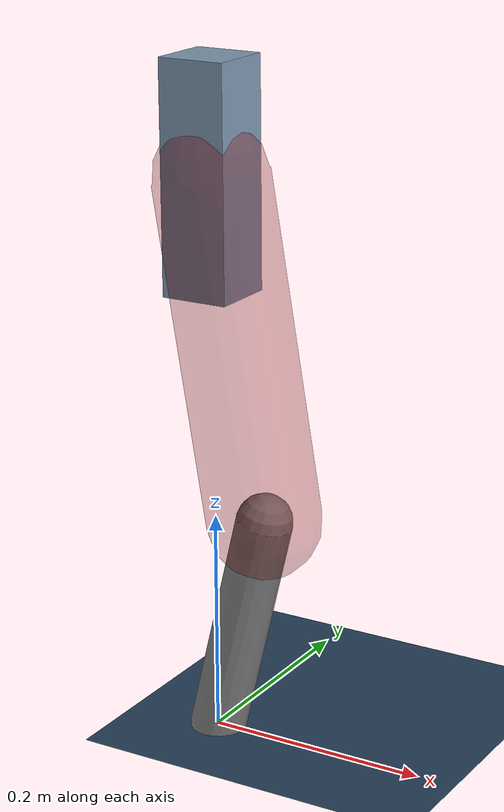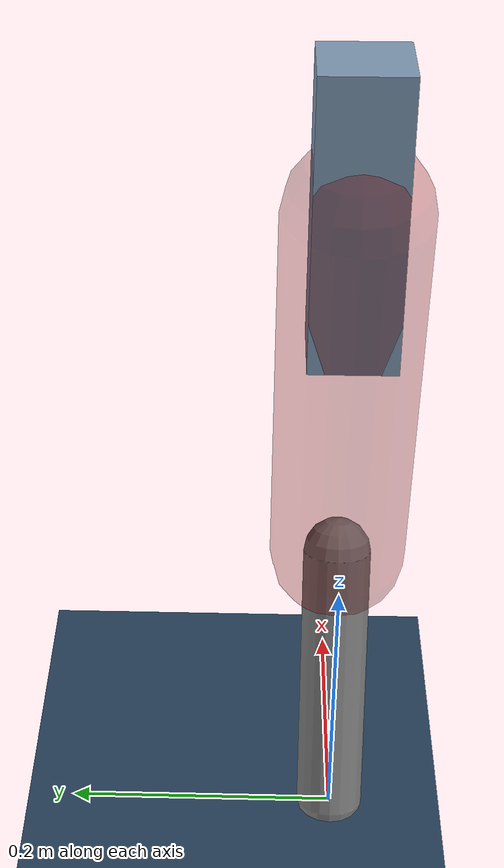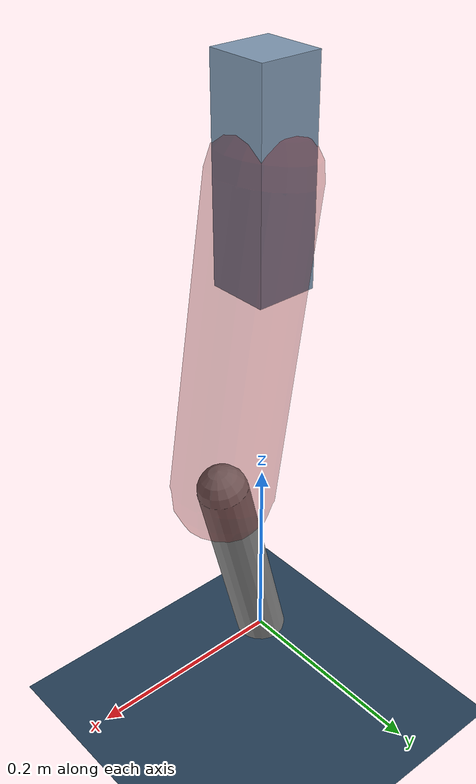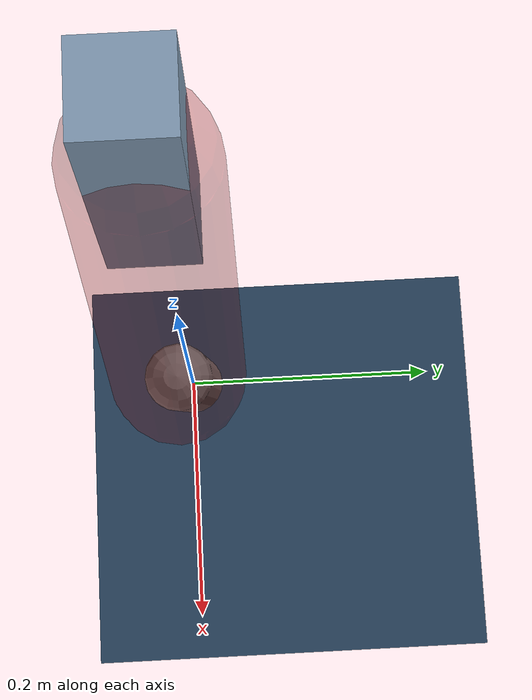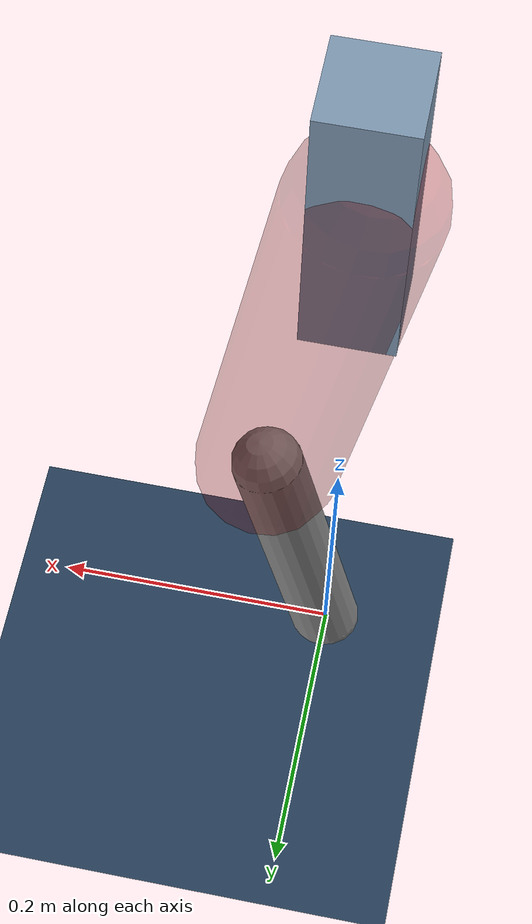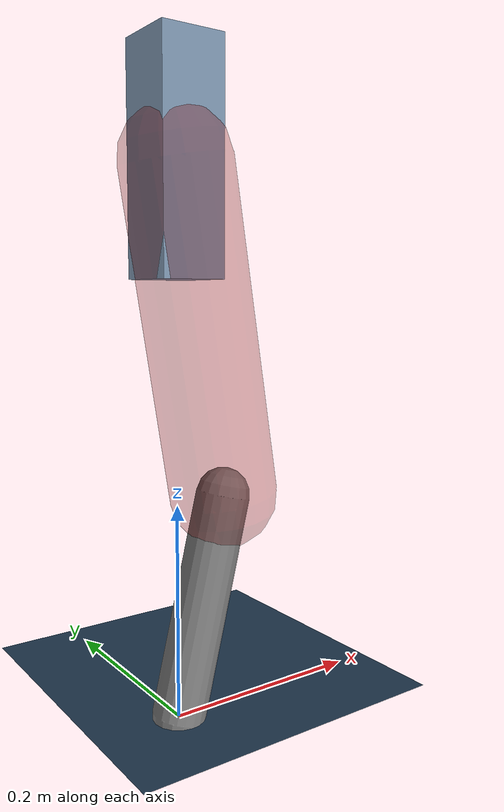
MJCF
<mujoco model="Hopper2D">
	<compiler inertiafromgeom="true" angle="radian" />
	<option timestep="0.001" integrator="implicit" cone="elliptic" solver="Newton" tolerance="1e-10" />

	<default>
		<geom contype="1" conaffinity="1" condim="3" friction="2 0.005 0.0001" solref="0.005 1" />
		<joint limited="true" damping="0.1" />
	</default>

	<asset>
		<texture name="skybox" type="skybox" builtin="gradient" rgb1=".4 .6 .8" rgb2="0 0 0" width="800" height="800" />
		<texture name="grid" type="2d" builtin="checker" rgb1=".1 .2 .3" rgb2=".2 .3 .4" width="300" height="300" mark="edge" markrgb=".2 .3 .4" />
		<material name="ground" texture="grid" texrepeat="1 1" texuniform="true" reflectance="0.1" />
		<material name="leg" rgba="0.5 0.6 0.7 1" />
	</asset>

	<worldbody>

		<geom name="floor" type="plane" size="5 5 0.25" material="ground" />

		<light directional="false" diffuse="0.8 0.8 0.8" specular="0.3 0.3 0.3" pos="0 0 2" dir="0 0 -1" />
		<light mode="targetbodycom" target="base" directional="false" diffuse="0.8 0.8 0.8" specular="0.3 0.3 0.3" pos="0 0 2" dir="0 0 -1" />

		<camera name="fixed" pos="0 -2 1" xyaxes="1 0 0 0 0 1" />
		<camera name="tracking" mode="trackcom" pos="0 -3 1" />

		<body name="root" pos="0 0 0.5003307350152638">
			<joint name="slide_x" type="slide" axis="1 0 0" range="-100 100" />
			<joint name="slide_z" type="slide" axis="0 0 1" range="0 10" />

			<body name="base" pos="0 0 0">
				<geom name="torso" type="box" size="0.03 0.03 0.1" mass="1.839" material="leg" />

				<body name="link1" pos="0 0 0" euler="0 1.4050979916727862 0">
					<joint type="hinge" axis="0 -1 0" pos="0 0 0" name="hinge1" limited="true" range="-3.14 3.14" stiffness="0" damping="0.1" />
					<geom name="thigh" type="capsule" fromto="0 0 0 0.2998492903462835 0 0" size="0.05" rgba="0.5 0 0 0.3" mass="0.9882930839349655" />

					<body name="link2" pos="0.2998492903462835 0 0" euler="0 0.40288926088853516 0">
						<joint type="hinge" axis="0 -1 0" pos="0 0 0" name="hinge2" limited="true" range="-3.14 3.14" stiffness="0" damping="0.1" />
						<geom name="shank" type="capsule" fromto="0 0 0 0.21048144466898033 0 0" size="0.025" mass="0.40968515573518427" />

					</body>
				</body>
			</body>
		</body>
	</worldbody>

	<actuator>
		<motor name="torque1" joint="hinge1" ctrlrange="-36.84855468430861 36.84855468430861" ctrllimited="true" gear="1" />
		<motor name="torque2" joint="hinge2" ctrlrange="-45.691146155991625 45.691146155991625" ctrllimited="true" gear="1" />
	</actuator>
</mujoco>
